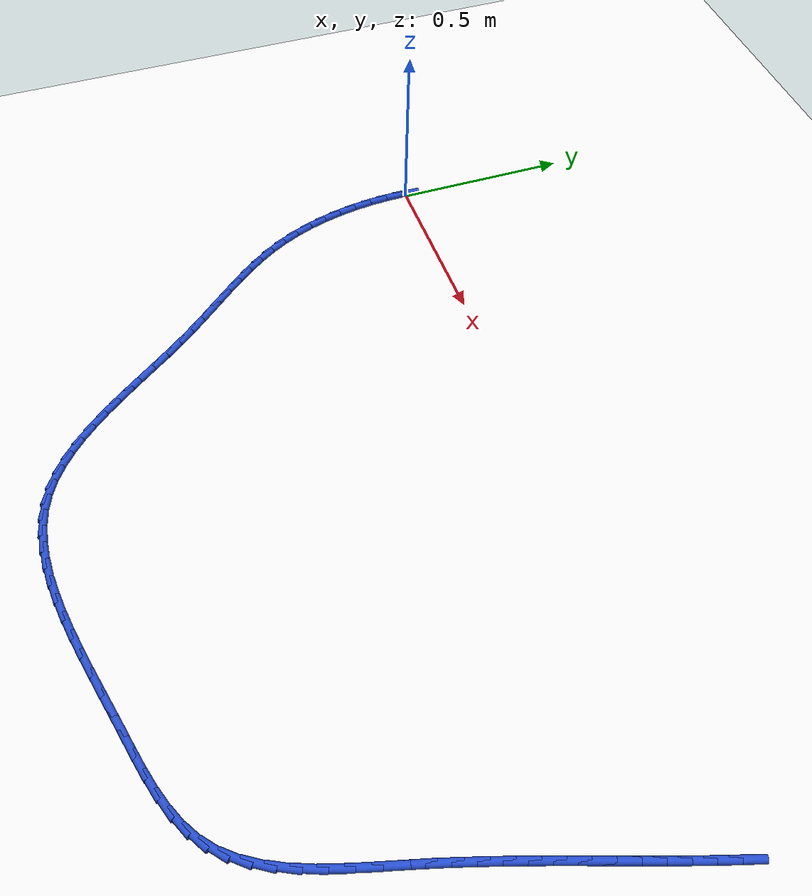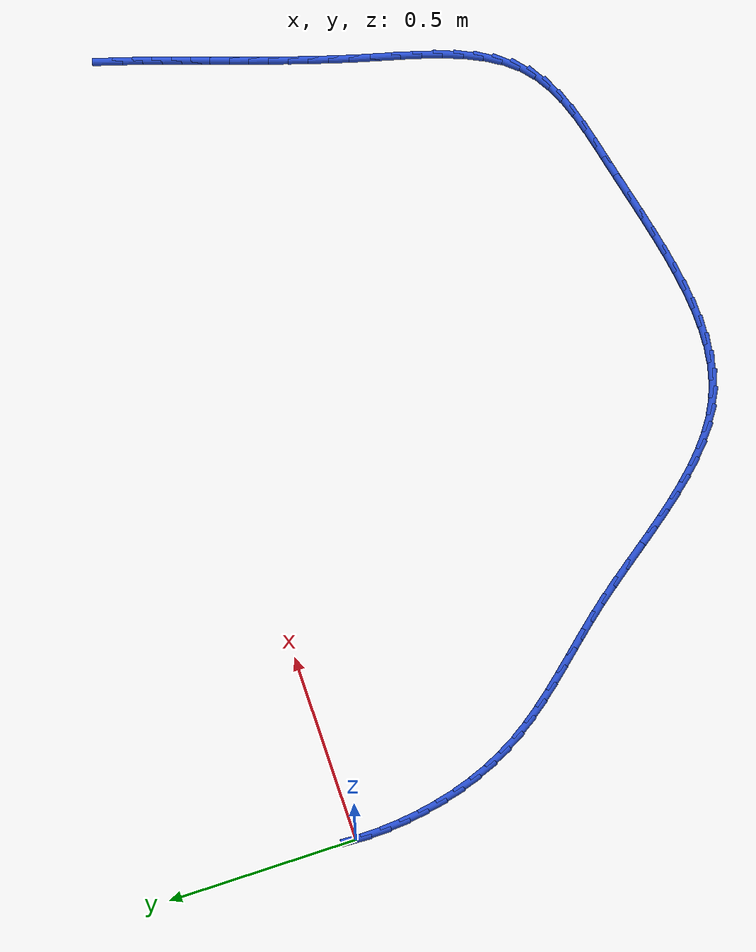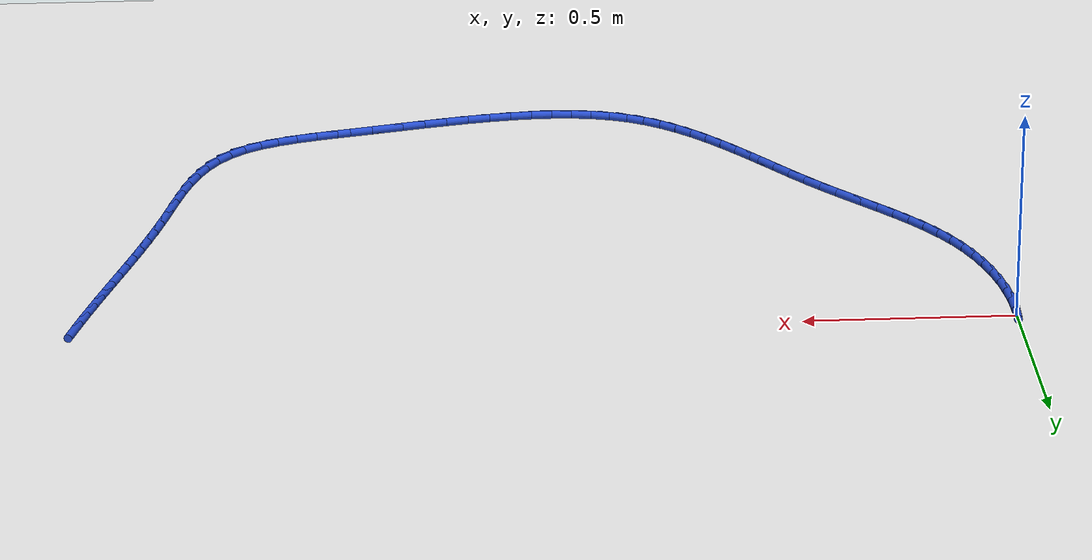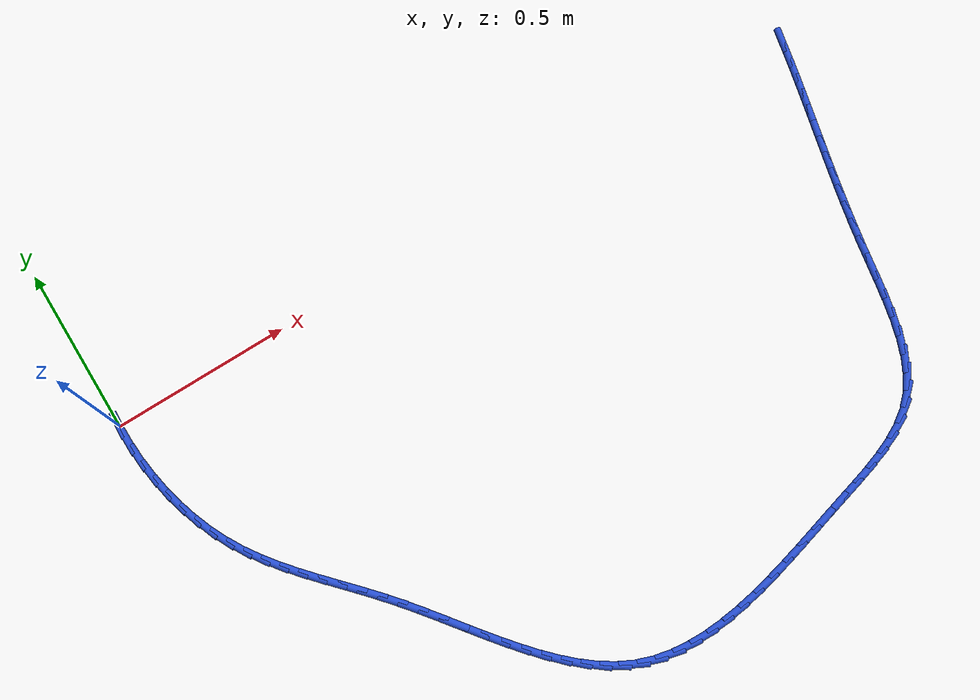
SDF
<sdf version="1.6">
 <world name="default">
  <model name="ground_plane">
   <static>1</static>
   <link name="link">
    <collision name="collision">
     <geometry><plane><normal>0 0 1</normal><size>100 100</size></plane></geometry>
     <surface><friction><ode><mu>100</mu><mu2>50</mu2></ode></friction></surface>
    </collision>
    <visual name="visual">
     <cast_shadows>0</cast_shadows>
     <geometry><plane><normal>0 0 1</normal><size>100 100</size></plane></geometry>
     <material>
      <script><uri>file://media/materials/scripts/gazebo.material</uri><name>Gazebo/WhiteGlow</name></script>
     </material>
    </visual>
   </link>
  </model>
  <model name="line">
   <link name="link_70">
    <pose>2.183260544087005 -0.030356498390447344 0.01 0 1.57 1.2775307542875487</pose>
    <collision name="collision">
     <geometry><cylinder><radius>0.01</radius><length>0.08</length></cylinder></geometry>
    </collision>
    <visual name="visual">
     <material>
      <script><name>Gazebo/Blue</name><uri>file://media/materials/scripts/gazebo.material</uri></script>
     </material>
     <geometry><cylinder><radius>0.01</radius><length>0.08</length></cylinder></geometry>
    </visual>
   </link>
   <link name="link_71">
    <pose>2.167971744952956 -0.08098624783546315 0.01 0 1.57 1.2671835937548104</pose>
    <collision name="collision">
     <geometry><cylinder><radius>0.01</radius><length>0.08</length></cylinder></geometry>
    </collision>
    <visual name="visual">
     <material>
      <script><name>Gazebo/Blue</name><uri>file://media/materials/scripts/gazebo.material</uri></script>
     </material>
     <geometry><cylinder><radius>0.01</radius><length>0.08</length></cylinder></geometry>
    </visual>
   </link>
   <link name="link_72">
    <pose>2.152357884446341 -0.13082315817340512 0.01 0 1.57 1.2588878591985484</pose>
    <collision name="collision">
     <geometry><cylinder><radius>0.01</radius><length>0.08</length></cylinder></geometry>
    </collision>
    <visual name="visual">
     <material>
      <script><name>Gazebo/Blue</name><uri>file://media/materials/scripts/gazebo.material</uri></script>
     </material>
     <geometry><cylinder><radius>0.01</radius><length>0.08</length></cylinder></geometry>
    </visual>
   </link>
   <link name="link_73">
    <pose>2.1364885693497917 -0.1800405480777796 0.01 0 1.57 1.2527761497505507</pose>
    <collision name="collision">
     <geometry><cylinder><radius>0.01</radius><length>0.08</length></cylinder></geometry>
    </collision>
    <visual name="visual">
     <material>
      <script><name>Gazebo/Blue</name><uri>file://media/materials/scripts/gazebo.material</uri></script>
     </material>
     <geometry><cylinder><radius>0.01</radius><length>0.08</length></cylinder></geometry>
    </visual>
   </link>
   <link name="link_74">
    <pose>2.1204334064459416 -0.22881173622209114 0.01 0 1.57 1.2489473800562647</pose>
    <collision name="collision">
     <geometry><cylinder><radius>0.01</radius><length>0.08</length></cylinder></geometry>
    </collision>
    <visual name="visual">
     <material>
      <script><name>Gazebo/Blue</name><uri>file://media/materials/scripts/gazebo.material</uri></script>
     </material>
     <geometry><cylinder><radius>0.01</radius><length>0.08</length></cylinder></geometry>
    </visual>
   </link>
   <link name="link_75">
    <pose>2.1042620025174203 -0.2773100412798462 0.01 0 1.57 1.247463671450417</pose>
    <collision name="collision">
     <geometry><cylinder><radius>0.01</radius><length>0.08</length></cylinder></geometry>
    </collision>
    <visual name="visual">
     <material>
      <script><name>Gazebo/Blue</name><uri>file://media/materials/scripts/gazebo.material</uri></script>
     </material>
     <geometry><cylinder><radius>0.01</radius><length>0.08</length></cylinder></geometry>
    </visual>
   </link>
   <link name="link_76">
    <pose>2.08804396434686 -0.3257087819245505 0.01 0 1.57 1.2483484133983966</pose>
    <collision name="collision">
     <geometry><cylinder><radius>0.01</radius><length>0.08</length></cylinder></geometry>
    </collision>
    <visual name="visual">
     <material>
      <script><name>Gazebo/Blue</name><uri>file://media/materials/scripts/gazebo.material</uri></script>
     </material>
     <geometry><cylinder><radius>0.01</radius><length>0.08</length></cylinder></geometry>
    </visual>
   </link>
   <link name="link_77">
    <pose>2.0718488987168926 -0.37418127682971003 0.01 0 1.57 1.2515855542970125</pose>
    <collision name="collision">
     <geometry><cylinder><radius>0.01</radius><length>0.08</length></cylinder></geometry>
    </collision>
    <visual name="visual">
     <material>
      <script><name>Gazebo/Blue</name><uri>file://media/materials/scripts/gazebo.material</uri></script>
     </material>
     <geometry><cylinder><radius>0.01</radius><length>0.08</length></cylinder></geometry>
    </visual>
   </link>
   <link name="link_78">
    <pose>2.0557464124101483 -0.4229008446688312 0.01 0 1.57 1.2571201402769574</pose>
    <collision name="collision">
     <geometry><cylinder><radius>0.01</radius><length>0.08</length></cylinder></geometry>
    </collision>
    <visual name="visual">
     <material>
      <script><name>Gazebo/Blue</name><uri>file://media/materials/scripts/gazebo.material</uri></script>
     </material>
     <geometry><cylinder><radius>0.01</radius><length>0.08</length></cylinder></geometry>
    </visual>
   </link>
   <link name="link_79">
    <pose>2.03980611220926 -0.47204080411541854 0.01 0 1.57 1.2648600832770414</pose>
    <collision name="collision">
     <geometry><cylinder><radius>0.01</radius><length>0.08</length></cylinder></geometry>
    </collision>
    <visual name="visual">
     <material>
      <script><name>Gazebo/Blue</name><uri>file://media/materials/scripts/gazebo.material</uri></script>
     </material>
     <geometry><cylinder><radius>0.01</radius><length>0.08</length></cylinder></geometry>
    </visual>
   </link>
   <link name="link_80">
    <pose>2.024097604896858 -0.5217744738429781 0.01 0 1.57 1.274679100836672</pose>
    <collision name="collision">
     <geometry><cylinder><radius>0.01</radius><length>0.08</length></cylinder></geometry>
    </collision>
    <visual name="visual">
     <material>
      <script><name>Gazebo/Blue</name><uri>file://media/materials/scripts/gazebo.material</uri></script>
     </material>
     <geometry><cylinder><radius>0.01</radius><length>0.08</length></cylinder></geometry>
    </visual>
   </link>
   <link name="link_81">
    <pose>2.008690497255575 -0.5722751725250164 0.01 0 1.57 1.286420726131899</pose>
    <collision name="collision">
     <geometry><cylinder><radius>0.01</radius><length>0.08</length></cylinder></geometry>
    </collision>
    <visual name="visual">
     <material>
      <script><name>Gazebo/Blue</name><uri>file://media/materials/scripts/gazebo.material</uri></script>
     </material>
     <geometry><cylinder><radius>0.01</radius><length>0.08</length></cylinder></geometry>
    </visual>
   </link>
   <link name="link_82">
    <pose>1.9936543960680415 -0.6237162188350394 0.01 0 1.57 1.2999032369720105</pose>
    <collision name="collision">
     <geometry><cylinder><radius>0.01</radius><length>0.08</length></cylinder></geometry>
    </collision>
    <visual name="visual">
     <material>
      <script><name>Gazebo/Blue</name><uri>file://media/materials/scripts/gazebo.material</uri></script>
     </material>
     <geometry><cylinder><radius>0.01</radius><length>0.08</length></cylinder></geometry>
    </visual>
   </link>
   <link name="link_83">
    <pose>1.9790589081168894 -0.6762709314465516 0.01 0 1.57 1.3123327240287515</pose>
    <collision name="collision">
     <geometry><cylinder><radius>0.01</radius><length>0.08</length></cylinder></geometry>
    </collision>
    <visual name="visual">
     <material>
      <script><name>Gazebo/Blue</name><uri>file://media/materials/scripts/gazebo.material</uri></script>
     </material>
     <geometry><cylinder><radius>0.01</radius><length>0.08</length></cylinder></geometry>
    </visual>
   </link>
   <link name="link_84">
    <pose>1.9648635282746276 -0.7299646154539047 0.01 0 1.57 1.3110259015849122</pose>
    <collision name="collision">
     <geometry><cylinder><radius>0.01</radius><length>0.08</length></cylinder></geometry>
    </collision>
    <visual name="visual">
     <material>
      <script><name>Gazebo/Blue</name><uri>file://media/materials/scripts/gazebo.material</uri></script>
     </material>
     <geometry><cylinder><radius>0.01</radius><length>0.08</length></cylinder></geometry>
    </visual>
   </link>
   <link name="link_85">
    <pose>1.9504794859732761 -0.7840855918224621 0.01 0 1.57 1.2922326068764516</pose>
    <collision name="collision">
     <geometry><cylinder><radius>0.01</radius><length>0.08</length></cylinder></geometry>
    </collision>
    <visual name="visual">
     <material>
      <script><name>Gazebo/Blue</name><uri>file://media/materials/scripts/gazebo.material</uri></script>
     </material>
     <geometry><cylinder><radius>0.01</radius><length>0.08</length></cylinder></geometry>
    </visual>
   </link>
   <link name="link_86">
    <pose>1.9351477002328303 -0.8376932484837023 0.01 0 1.57 1.255026481854984</pose>
    <collision name="collision">
     <geometry><cylinder><radius>0.01</radius><length>0.08</length></cylinder></geometry>
    </collision>
    <visual name="visual">
     <material>
      <script><name>Gazebo/Blue</name><uri>file://media/materials/scripts/gazebo.material</uri></script>
     </material>
     <geometry><cylinder><radius>0.01</radius><length>0.08</length></cylinder></geometry>
    </visual>
   </link>
   <link name="link_87">
    <pose>1.9181090368539049 -0.8898469018310601 0.01 0 1.57 1.19722009510703</pose>
    <collision name="collision">
     <geometry><cylinder><radius>0.01</radius><length>0.08</length></cylinder></geometry>
    </collision>
    <visual name="visual">
     <material>
      <script><name>Gazebo/Blue</name><uri>file://media/materials/scripts/gazebo.material</uri></script>
     </material>
     <geometry><cylinder><radius>0.01</radius><length>0.08</length></cylinder></geometry>
    </visual>
   </link>
   <link name="link_88">
    <pose>1.8986043616371178 -0.9396058682579685 0.01 0 1.57 1.1154888800454805</pose>
    <collision name="collision">
     <geometry><cylinder><radius>0.01</radius><length>0.08</length></cylinder></geometry>
    </collision>
    <visual name="visual">
     <material>
      <script><name>Gazebo/Blue</name><uri>file://media/materials/scripts/gazebo.material</uri></script>
     </material>
     <geometry><cylinder><radius>0.01</radius><length>0.08</length></cylinder></geometry>
    </visual>
   </link>
   <link name="link_89">
    <pose>1.8758745403830839 -0.9860294641578616 0.01 0 1.57 1.0058771852882762</pose>
    <collision name="collision">
     <geometry><cylinder><radius>0.01</radius><length>0.08</length></cylinder></geometry>
    </collision>
    <visual name="visual">
     <material>
      <script><name>Gazebo/Blue</name><uri>file://media/materials/scripts/gazebo.material</uri></script>
     </material>
     <geometry><cylinder><radius>0.01</radius><length>0.08</length></cylinder></geometry>
    </visual>
   </link>
   <link name="link_90">
    <pose>1.8491604388924179 -1.0281770059241735 0.01 0 1.57 0.8652604406469959</pose>
    <collision name="collision">
     <geometry><cylinder><radius>0.01</radius><length>0.08</length></cylinder></geometry>
    </collision>
    <visual name="visual">
     <material>
      <script><name>Gazebo/Blue</name><uri>file://media/materials/scripts/gazebo.material</uri></script>
     </material>
     <geometry><cylinder><radius>0.01</radius><length>0.08</length></cylinder></geometry>
    </visual>
   </link>
   <link name="link_91">
    <pose>1.817702922965737 -1.065107809950339 0.01 0 1.57 0.6967732184441172</pose>
    <collision name="collision">
     <geometry><cylinder><radius>0.01</radius><length>0.08</length></cylinder></geometry>
    </collision>
    <visual name="visual">
     <material>
      <script><name>Gazebo/Blue</name><uri>file://media/materials/scripts/gazebo.material</uri></script>
     </material>
     <geometry><cylinder><radius>0.01</radius><length>0.08</length></cylinder></geometry>
    </visual>
   </link>
   <link name="link_92">
    <pose>1.780816101430945 -1.0959742334477094 0.01 0 1.57 0.5377361118625765</pose>
    <collision name="collision">
     <geometry><cylinder><radius>0.01</radius><length>0.08</length></cylinder></geometry>
    </collision>
    <visual name="visual">
     <material>
      <script><name>Gazebo/Blue</name><uri>file://media/materials/scripts/gazebo.material</uri></script>
     </material>
     <geometry><cylinder><radius>0.01</radius><length>0.08</length></cylinder></geometry>
    </visual>
   </link>
   <link name="link_93">
    <pose>1.7387195139450442 -1.1210788048866371 0.01 0 1.57 0.4139980940304455</pose>
    <collision name="collision">
     <geometry><cylinder><radius>0.01</radius><length>0.08</length></cylinder></geometry>
    </collision>
    <visual name="visual">
     <material>
      <script><name>Gazebo/Blue</name><uri>file://media/materials/scripts/gazebo.material</uri></script>
     </material>
     <geometry><cylinder><radius>0.01</radius><length>0.08</length></cylinder></geometry>
    </visual>
   </link>
   <link name="link_94">
    <pose>1.692243546746737 -1.1415000128211659 0.01 0 1.57 0.32462176844138846</pose>
    <collision name="collision">
     <geometry><cylinder><radius>0.01</radius><length>0.08</length></cylinder></geometry>
    </collision>
    <visual name="visual">
     <material>
      <script><name>Gazebo/Blue</name><uri>file://media/materials/scripts/gazebo.material</uri></script>
     </material>
     <geometry><cylinder><radius>0.01</radius><length>0.08</length></cylinder></geometry>
    </visual>
   </link>
   <link name="link_95">
    <pose>1.6422300364221383 -1.1583308912129828 0.01 0 1.57 0.2655162784013113</pose>
    <collision name="collision">
     <geometry><cylinder><radius>0.01</radius><length>0.08</length></cylinder></geometry>
    </collision>
    <visual name="visual">
     <material>
      <script><name>Gazebo/Blue</name><uri>file://media/materials/scripts/gazebo.material</uri></script>
     </material>
     <geometry><cylinder><radius>0.01</radius><length>0.08</length></cylinder></geometry>
    </visual>
   </link>
   <link name="link_96">
    <pose>1.5895208195573634 -1.172664474023772 0.01 0 1.57 0.23266947640715235</pose>
    <collision name="collision">
     <geometry><cylinder><radius>0.01</radius><length>0.08</length></cylinder></geometry>
    </collision>
    <visual name="visual">
     <material>
      <script><name>Gazebo/Blue</name><uri>file://media/materials/scripts/gazebo.material</uri></script>
     </material>
     <geometry><cylinder><radius>0.01</radius><length>0.08</length></cylinder></geometry>
    </visual>
   </link>
   <link name="link_97">
    <pose>1.5349577327385275 -1.1855937952152211 0.01 0 1.57 0.22325042758566746</pose>
    <collision name="collision">
     <geometry><cylinder><radius>0.01</radius><length>0.08</length></cylinder></geometry>
    </collision>
    <visual name="visual">
     <material>
      <script><name>Gazebo/Blue</name><uri>file://media/materials/scripts/gazebo.material</uri></script>
     </material>
     <geometry><cylinder><radius>0.01</radius><length>0.08</length></cylinder></geometry>
    </visual>
   </link>
   <link name="link_98">
    <pose>1.4793823847468661 -1.198211337867605 0.01 0 1.57 0.22891957067701266</pose>
    <collision name="collision">
     <geometry><cylinder><radius>0.01</radius><length>0.08</length></cylinder></geometry>
    </collision>
    <visual name="visual">
     <material>
      <script><name>Gazebo/Blue</name><uri>file://media/materials/scripts/gazebo.material</uri></script>
     </material>
     <geometry><cylinder><radius>0.01</radius><length>0.08</length></cylinder></geometry>
    </visual>
   </link>
   <link name="link_99">
    <pose>1.4234820377725177 -1.2112363416610217 0.01 0 1.57 0.23046132761342264</pose>
    <collision name="collision">
     <geometry><cylinder><radius>0.01</radius><length>0.08</length></cylinder></geometry>
    </collision>
    <visual name="visual">
     <material>
      <script><name>Gazebo/Blue</name><uri>file://media/materials/scripts/gazebo.material</uri></script>
     </material>
     <geometry><cylinder><radius>0.01</radius><length>0.08</length></cylinder></geometry>
    </visual>
   </link>
   <link name="link_100">
    <pose>1.3675214635529256 -1.2243663730919583 0.01 0 1.57 0.22469038528834107</pose>
    <collision name="collision">
     <geometry><cylinder><radius>0.01</radius><length>0.08</length></cylinder></geometry>
    </collision>
    <visual name="visual">
     <material>
      <script><name>Gazebo/Blue</name><uri>file://media/materials/scripts/gazebo.material</uri></script>
     </material>
     <geometry><cylinder><radius>0.01</radius><length>0.08</length></cylinder></geometry>
    </visual>
   </link>
   <link name="link_101">
    <pose>1.3116937956271653 -1.2371257620175173 0.01 0 1.57 0.21143560265095043</pose>
    <collision name="collision">
     <geometry><cylinder><radius>0.01</radius><length>0.08</length></cylinder></geometry>
    </collision>
    <visual name="visual">
     <material>
      <script><name>Gazebo/Blue</name><uri>file://media/materials/scripts/gazebo.material</uri></script>
     </material>
     <geometry><cylinder><radius>0.01</radius><length>0.08</length></cylinder></geometry>
    </visual>
   </link>
   <link name="link_102">
    <pose>1.2561921675343124 -1.2490388382948032 0.01 0 1.57 0.19029598251479088</pose>
    <collision name="collision">
     <geometry><cylinder><radius>0.01</radius><length>0.08</length></cylinder></geometry>
    </collision>
    <visual name="visual">
     <material>
      <script><name>Gazebo/Blue</name><uri>file://media/materials/scripts/gazebo.material</uri></script>
     </material>
     <geometry><cylinder><radius>0.01</radius><length>0.08</length></cylinder></geometry>
    </visual>
   </link>
   <link name="link_103">
    <pose>1.2012097128134405 -1.2596299317809196 0.01 0 1.57 0.16063483299522993</pose>
    <collision name="collision">
     <geometry><cylinder><radius>0.01</radius><length>0.08</length></cylinder></geometry>
    </collision>
    <visual name="visual">
     <material>
      <script><name>Gazebo/Blue</name><uri>file://media/materials/scripts/gazebo.material</uri></script>
     </material>
     <geometry><cylinder><radius>0.01</radius><length>0.08</length></cylinder></geometry>
    </visual>
   </link>
   <link name="link_104">
    <pose>1.1469395650036245 -1.2684233723329705 0.01 0 1.57 0.121577745931814</pose>
    <collision name="collision">
     <geometry><cylinder><radius>0.01</radius><length>0.08</length></cylinder></geometry>
    </collision>
    <visual name="visual">
     <material>
      <script><name>Gazebo/Blue</name><uri>file://media/materials/scripts/gazebo.material</uri></script>
     </material>
     <geometry><cylinder><radius>0.01</radius><length>0.08</length></cylinder></geometry>
    </visual>
   </link>
   <link name="link_105">
    <pose>1.0935748576439406 -1.2749434898080594 0.01 0 1.57 0.0720275304244111</pose>
    <collision name="collision">
     <geometry><cylinder><radius>0.01</radius><length>0.08</length></cylinder></geometry>
    </collision>
    <visual name="visual">
     <material>
      <script><name>Gazebo/Blue</name><uri>file://media/materials/scripts/gazebo.material</uri></script>
     </material>
     <geometry><cylinder><radius>0.01</radius><length>0.08</length></cylinder></geometry>
    </visual>
   </link>
   <link name="link_106">
    <pose>1.041308724273463 -1.2787146140632897 0.01 0 1.57 0.010719884548669232</pose>
    <collision name="collision">
     <geometry><cylinder><radius>0.01</radius><length>0.08</length></cylinder></geometry>
    </collision>
    <visual name="visual">
     <material>
      <script><name>Gazebo/Blue</name><uri>file://media/materials/scripts/gazebo.material</uri></script>
     </material>
     <geometry><cylinder><radius>0.01</radius><length>0.08</length></cylinder></geometry>
    </visual>
   </link>
   <link name="link_107">
    <pose>0.9903342984312669 -1.279261074955766 0.01 0 1.57 -0.06364194480311075</pose>
    <collision name="collision">
     <geometry><cylinder><radius>0.01</radius><length>0.08</length></cylinder></geometry>
    </collision>
    <visual name="visual">
     <material>
      <script><name>Gazebo/Blue</name><uri>file://media/materials/scripts/gazebo.material</uri></script>
     </material>
     <geometry><cylinder><radius>0.01</radius><length>0.08</length></cylinder></geometry>
    </visual>
   </link>
   <link name="link_108">
    <pose>0.9408447136564266 -1.2761072023425912 0.01 0 1.57 -0.15212304219547082</pose>
    <collision name="collision">
     <geometry><cylinder><radius>0.01</radius><length>0.08</length></cylinder></geometry>
    </collision>
    <visual name="visual">
     <material>
      <script><name>Gazebo/Blue</name><uri>file://media/materials/scripts/gazebo.material</uri></script>
     </material>
     <geometry><cylinder><radius>0.01</radius><length>0.08</length></cylinder></geometry>
    </visual>
   </link>
   <link name="link_109">
    <pose>0.8930331034880169 -1.2687773260808697 0.01 0 1.57 -0.2551227010592658</pose>
    <collision name="collision">
     <geometry><cylinder><radius>0.01</radius><length>0.08</length></cylinder></geometry>
    </collision>
    <visual name="visual">
     <material>
      <script><name>Gazebo/Blue</name><uri>file://media/materials/scripts/gazebo.material</uri></script>
     </material>
     <geometry><cylinder><radius>0.01</radius><length>0.08</length></cylinder></geometry>
    </visual>
   </link>
   <link name="link_110">
    <pose>0.8470926014651141 -1.256795776027705 0.01 0 1.57 -0.3717944420493732</pose>
    <collision name="collision">
     <geometry><cylinder><radius>0.01</radius><length>0.08</length></cylinder></geometry>
    </collision>
    <visual name="visual">
     <material>
      <script><name>Gazebo/Blue</name><uri>file://media/materials/scripts/gazebo.material</uri></script>
     </material>
     <geometry><cylinder><radius>0.01</radius><length>0.08</length></cylinder></geometry>
    </visual>
   </link>
   <link name="link_111">
    <pose>0.803216245162918 -1.2396871124793436 0.01 0 1.57 -0.49398485942551074</pose>
    <collision name="collision">
     <geometry><cylinder><radius>0.01</radius><length>0.08</length></cylinder></geometry>
    </collision>
    <visual name="visual">
     <material>
      <script><name>Gazebo/Blue</name><uri>file://media/materials/scripts/gazebo.material</uri></script>
     </material>
     <geometry><cylinder><radius>0.01</radius><length>0.08</length></cylinder></geometry>
    </visual>
   </link>
   <link name="link_112">
    <pose>0.7614955159364419 -1.2172197638391167 0.01 0 1.57 -0.6024697402337924</pose>
    <collision name="collision">
     <geometry><cylinder><radius>0.01</radius><length>0.08</length></cylinder></geometry>
    </collision>
    <visual name="visual">
     <material>
      <script><name>Gazebo/Blue</name><uri>file://media/materials/scripts/gazebo.material</uri></script>
     </material>
     <geometry><cylinder><radius>0.01</radius><length>0.08</length></cylinder></geometry>
    </visual>
   </link>
   <link name="link_113">
    <pose>0.7217276693737189 -1.189868686192418 0.01 0 1.57 -0.6932958580937586</pose>
    <collision name="collision">
     <geometry><cylinder><radius>0.01</radius><length>0.08</length></cylinder></geometry>
    </collision>
    <visual name="visual">
     <material>
      <script><name>Gazebo/Blue</name><uri>file://media/materials/scripts/gazebo.material</uri></script>
     </material>
     <geometry><cylinder><radius>0.01</radius><length>0.08</length></cylinder></geometry>
    </visual>
   </link>
   <link name="link_114">
    <pose>0.6836569834390063 -1.1582360513954242 0.01 0 1.57 -0.7670904503285104</pose>
    <collision name="collision">
     <geometry><cylinder><radius>0.01</radius><length>0.08</length></cylinder></geometry>
    </collision>
    <visual name="visual">
     <material>
      <script><name>Gazebo/Blue</name><uri>file://media/materials/scripts/gazebo.material</uri></script>
     </material>
     <geometry><cylinder><radius>0.01</radius><length>0.08</length></cylinder></geometry>
    </visual>
   </link>
   <link name="link_115">
    <pose>0.6470277360965586 -1.122924031304309 0.01 0 1.57 -0.8252739733268051</pose>
    <collision name="collision">
     <geometry><cylinder><radius>0.01</radius><length>0.08</length></cylinder></geometry>
    </collision>
    <visual name="visual">
     <material>
      <script><name>Gazebo/Blue</name><uri>file://media/materials/scripts/gazebo.material</uri></script>
     </material>
     <geometry><cylinder><radius>0.01</radius><length>0.08</length></cylinder></geometry>
    </visual>
   </link>
   <link name="link_116">
    <pose>0.6115842053106317 -1.0845347977752477 0.01 0 1.57 -0.8694517552657746</pose>
    <collision name="collision">
     <geometry><cylinder><radius>0.01</radius><length>0.08</length></cylinder></geometry>
    </collision>
    <visual name="visual">
     <material>
      <script><name>Gazebo/Blue</name><uri>file://media/materials/scripts/gazebo.material</uri></script>
     </material>
     <geometry><cylinder><radius>0.01</radius><length>0.08</length></cylinder></geometry>
    </visual>
   </link>
   <link name="link_117">
    <pose>0.5770706690454805 -1.043670522664414 0.01 0 1.57 -0.9010755306076589</pose>
    <collision name="collision">
     <geometry><cylinder><radius>0.01</radius><length>0.08</length></cylinder></geometry>
    </collision>
    <visual name="visual">
     <material>
      <script><name>Gazebo/Blue</name><uri>file://media/materials/scripts/gazebo.material</uri></script>
     </material>
     <geometry><cylinder><radius>0.01</radius><length>0.08</length></cylinder></geometry>
    </visual>
   </link>
   <link name="link_118">
    <pose>0.5432314052653618 -1.000933377827985 0.01 0 1.57 -0.9212896290472794</pose>
    <collision name="collision">
     <geometry><cylinder><radius>0.01</radius><length>0.08</length></cylinder></geometry>
    </collision>
    <visual name="visual">
     <material>
      <script><name>Gazebo/Blue</name><uri>file://media/materials/scripts/gazebo.material</uri></script>
     </material>
     <geometry><cylinder><radius>0.01</radius><length>0.08</length></cylinder></geometry>
    </visual>
   </link>
   <link name="link_119">
    <pose>0.5098106919345307 -0.9569255351221344 0.01 0 1.57 -0.9308773974724414</pose>
    <collision name="collision">
     <geometry><cylinder><radius>0.01</radius><length>0.08</length></cylinder></geometry>
    </collision>
    <visual name="visual">
     <material>
      <script><name>Gazebo/Blue</name><uri>file://media/materials/scripts/gazebo.material</uri></script>
     </material>
     <geometry><cylinder><radius>0.01</radius><length>0.08</length></cylinder></geometry>
    </visual>
   </link>
   <link name="link_120">
    <pose>0.4765528070172427 -0.9122491664030371 0.01 0 1.57 -0.9302521476968644</pose>
    <collision name="collision">
     <geometry><cylinder><radius>0.01</radius><length>0.08</length></cylinder></geometry>
    </collision>
    <visual name="visual">
     <material>
      <script><name>Gazebo/Blue</name><uri>file://media/materials/scripts/gazebo.material</uri></script>
     </material>
     <geometry><cylinder><radius>0.01</radius><length>0.08</length></cylinder></geometry>
    </visual>
   </link>
   <link name="link_121">
    <pose>0.4432020284777533 -0.867506443526868 0.01 0 1.57 -0.9194628515260147</pose>
    <collision name="collision">
     <geometry><cylinder><radius>0.01</radius><length>0.08</length></cylinder></geometry>
    </collision>
    <visual name="visual">
     <material>
      <script><name>Gazebo/Blue</name><uri>file://media/materials/scripts/gazebo.material</uri></script>
     </material>
     <geometry><cylinder><radius>0.01</radius><length>0.08</length></cylinder></geometry>
    </visual>
   </link>
   <link name="link_122">
    <pose>0.40950263428031763 -0.823299538349801 0.01 0 1.57 -0.8982027486020828</pose>
    <collision name="collision">
     <geometry><cylinder><radius>0.01</radius><length>0.08</length></cylinder></geometry>
    </collision>
    <visual name="visual">
     <material>
      <script><name>Gazebo/Blue</name><uri>file://media/materials/scripts/gazebo.material</uri></script>
     </material>
     <geometry><cylinder><radius>0.01</radius><length>0.08</length></cylinder></geometry>
    </visual>
   </link>
   <link name="link_123">
    <pose>0.3751989089485727 -0.7802306129818329 0.01 0 1.57 -0.8701229049107871</pose>
    <collision name="collision">
     <geometry><cylinder><radius>0.01</radius><length>0.08</length></cylinder></geometry>
    </collision>
    <visual name="visual">
     <material>
      <script><name>Gazebo/Blue</name><uri>file://media/materials/scripts/gazebo.material</uri></script>
     </material>
     <geometry><cylinder><radius>0.01</radius><length>0.08</length></cylinder></geometry>
    </visual>
   </link>
   <link name="link_124">
    <pose>0.3401706828013465 -0.7387004303659362 0.01 0 1.57 -0.8503174273482879</pose>
    <collision name="collision">
     <geometry><cylinder><radius>0.01</radius><length>0.08</length></cylinder></geometry>
    </collision>
    <visual name="visual">
     <material>
      <script><name>Gazebo/Blue</name><uri>file://media/materials/scripts/gazebo.material</uri></script>
     </material>
     <geometry><cylinder><radius>0.01</radius><length>0.08</length></cylinder></geometry>
    </visual>
   </link>
   <link name="link_125">
    <pose>0.3047819061410228 -0.6983904293134285 0.01 0 1.57 -0.8426739527885024</pose>
    <collision name="collision">
     <geometry><cylinder><radius>0.01</radius><length>0.08</length></cylinder></geometry>
    </collision>
    <visual name="visual">
     <material>
      <script><name>Gazebo/Blue</name><uri>file://media/materials/scripts/gazebo.material</uri></script>
     </material>
     <geometry><cylinder><radius>0.01</radius><length>0.08</length></cylinder></geometry>
    </visual>
   </link>
   <link name="link_126">
    <pose>0.2695045684528042 -0.6588215198534952 0.01 0 1.57 -0.8476547362056152</pose>
    <collision name="collision">
     <geometry><cylinder><radius>0.01</radius><length>0.08</length></cylinder></geometry>
    </collision>
    <visual name="visual">
     <material>
      <script><name>Gazebo/Blue</name><uri>file://media/materials/scripts/gazebo.material</uri></script>
     </material>
     <geometry><cylinder><radius>0.01</radius><length>0.08</length></cylinder></geometry>
    </visual>
   </link>
   <link name="link_127">
    <pose>0.23481065922189429 -0.6195146120153241 0.01 0 1.57 -0.8656696054393812</pose>
    <collision name="collision">
     <geometry><cylinder><radius>0.01</radius><length>0.08</length></cylinder></geometry>
    </collision>
    <visual name="visual">
     <material>
      <script><name>Gazebo/Blue</name><uri>file://media/materials/scripts/gazebo.material</uri></script>
     </material>
     <geometry><cylinder><radius>0.01</radius><length>0.08</length></cylinder></geometry>
    </visual>
   </link>
   <link name="link_128">
    <pose>0.2011721679334953 -0.5799906158281 0.01 0 1.57 -0.8970424376718735</pose>
    <collision name="collision">
     <geometry><cylinder><radius>0.01</radius><length>0.08</length></cylinder></geometry>
    </collision>
    <visual name="visual">
     <material>
      <script><name>Gazebo/Blue</name><uri>file://media/materials/scripts/gazebo.material</uri></script>
     </material>
     <geometry><cylinder><radius>0.01</radius><length>0.08</length></cylinder></geometry>
    </visual>
   </link>
   <link name="link_129">
    <pose>0.16906108407281 -0.5397704413210093 0.01 0 1.57 -0.9419066620490728</pose>
    <collision name="collision">
     <geometry><cylinder><radius>0.01</radius><length>0.08</length></cylinder></geometry>
    </collision>
    <visual name="visual">
     <material>
      <script><name>Gazebo/Blue</name><uri>file://media/materials/scripts/gazebo.material</uri></script>
     </material>
     <geometry><cylinder><radius>0.01</radius><length>0.08</length></cylinder></geometry>
    </visual>
   </link>
   <link name="link_130">
    <pose>0.1389493971250412 -0.4983749985232378 0.01 0 1.57 -1.0000272845059244</pose>
    <collision name="collision">
     <geometry><cylinder><radius>0.01</radius><length>0.08</length></cylinder></geometry>
    </collision>
    <visual name="visual">
     <material>
      <script><name>Gazebo/Blue</name><uri>file://media/materials/scripts/gazebo.material</uri></script>
     </material>
     <geometry><cylinder><radius>0.01</radius><length>0.08</length></cylinder></geometry>
    </visual>
   </link>
   <link name="link_131">
    <pose>0.11130909657539118 -0.4553251974639711 0.01 0 1.57 -1.0701921130785315</pose>
    <collision name="collision">
     <geometry><cylinder><radius>0.01</radius><length>0.08</length></cylinder></geometry>
    </collision>
    <visual name="visual">
     <material>
      <script><name>Gazebo/Blue</name><uri>file://media/materials/scripts/gazebo.material</uri></script>
     </material>
     <geometry><cylinder><radius>0.01</radius><length>0.08</length></cylinder></geometry>
    </visual>
   </link>
   <link name="link_132">
    <pose>0.0866005016189644 -0.41016129858895983 0.01 0 1.57 -1.1433108890573642</pose>
    <collision name="collision">
     <geometry><cylinder><radius>0.01</radius><length>0.08</length></cylinder></geometry>
    </collision>
    <visual name="visual">
     <material>
      <script><name>Gazebo/Blue</name><uri>file://media/materials/scripts/gazebo.material</uri></script>
     </material>
     <geometry><cylinder><radius>0.01</radius><length>0.08</length></cylinder></geometry>
    </visual>
   </link>
   <link name="link_133">
    <pose>0.06503792503456512 -0.362831463655082 0.01 0 1.57 -1.211996101352494</pose>
    <collision name="collision">
     <geometry><cylinder><radius>0.01</radius><length>0.08</length></cylinder></geometry>
    </collision>
    <visual name="visual">
     <material>
      <script><name>Gazebo/Blue</name><uri>file://media/materials/scripts/gazebo.material</uri></script>
     </material>
     <geometry><cylinder><radius>0.01</radius><length>0.08</length></cylinder></geometry>
    </visual>
   </link>
   <link name="link_134">
    <pose>0.04660151454237147 -0.3136721216679789 0.01 0 1.57 -1.276654885698542</pose>
    <collision name="collision">
     <geometry><cylinder><radius>0.01</radius><length>0.08</length></cylinder></geometry>
    </collision>
    <visual name="visual">
     <material>
      <script><name>Gazebo/Blue</name><uri>file://media/materials/scripts/gazebo.material</uri></script>
     </material>
     <geometry><cylinder><radius>0.01</radius><length>0.08</length></cylinder></geometry>
    </visual>
   </link>
   <link name="link_135">
    <pose>0.031262117650855945 -0.2630351222414421 0.01 0 1.57 -1.338021281687093</pose>
    <collision name="collision">
     <geometry><cylinder><radius>0.01</radius><length>0.08</length></cylinder></geometry>
    </collision>
    <visual name="visual">
     <material>
      <script><name>Gazebo/Blue</name><uri>file://media/materials/scripts/gazebo.material</uri></script>
     </material>
     <geometry><cylinder><radius>0.01</radius><length>0.08</length></cylinder></geometry>
    </visual>
   </link>
   <link name="link_136">
    <pose>0.018990581868491743 -0.21127231498926552 0.01 0 1.57 -1.3968324442950737</pose>
    <collision name="collision">
     <geometry><cylinder><radius>0.01</radius><length>0.08</length></cylinder></geometry>
    </collision>
    <visual name="visual">
     <material>
      <script><name>Gazebo/Blue</name><uri>file://media/materials/scripts/gazebo.material</uri></script>
     </material>
     <geometry><cylinder><radius>0.01</radius><length>0.08</length></cylinder></geometry>
    </visual>
   </link>
   <link name="link_137">
    <pose>0.009757754703751327 -0.15873554952524074 0.01 0 1.57 -1.4538213985131667</pose>
    <collision name="collision">
     <geometry><cylinder><radius>0.01</radius><length>0.08</length></cylinder></geometry>
    </collision>
    <visual name="visual">
     <material>
      <script><name>Gazebo/Blue</name><uri>file://media/materials/scripts/gazebo.material</uri></script>
     </material>
     <geometry><cylinder><radius>0.01</radius><length>0.08</length></cylinder></geometry>
    </visual>
   </link>
   <link name="link_138">
    <pose>0.003534483665107423 -0.1057766754631602 0.01 0 1.57 -1.5097198225626336</pose>
    <collision name="collision">
     <geometry><cylinder><radius>0.01</radius><length>0.08</length></cylinder></geometry>
    </collision>
    <visual name="visual">
     <material>
      <script><name>Gazebo/Blue</name><uri>file://media/materials/scripts/gazebo.material</uri></script>
     </material>
     <geometry><cylinder><radius>0.01</radius><length>0.08</length></cylinder></geometry>
    </visual>
   </link>
   <link name="link_139">
    <pose>0.00029161626103276286 -0.05274754241681621 0.01 0 1.57 -1.5652678551983246</pose>
    <collision name="collision">
     <geometry><cylinder><radius>0.01</radius><length>0.08</length></cylinder></geometry>
    </collision>
    <visual name="visual">
     <material>
      <script><name>Gazebo/Blue</name><uri>file://media/materials/scripts/gazebo.material</uri></script>
     </material>
     <geometry><cylinder><radius>0.01</radius><length>0.08</length></cylinder></geometry>
    </visual>
   </link>
   <link name="link_140">
    <pose>6.938893903907228e-17 -3.469446951953614e-16 0.01 0 1.57 1.5203636850602669</pose>
    <collision name="collision">
     <geometry><cylinder><radius>0.01</radius><length>0.08</length></cylinder></geometry>
    </collision>
    <visual name="visual">
     <material>
      <script><name>Gazebo/Blue</name><uri>file://media/materials/scripts/gazebo.material</uri></script>
     </material>
     <geometry><cylinder><radius>0.01</radius><length>0.08</length></cylinder></geometry>
    </visual>
   </link>
  </model>
 </world>
</sdf>
